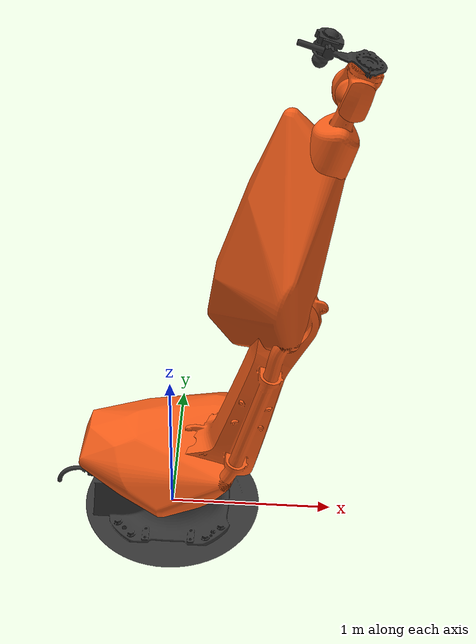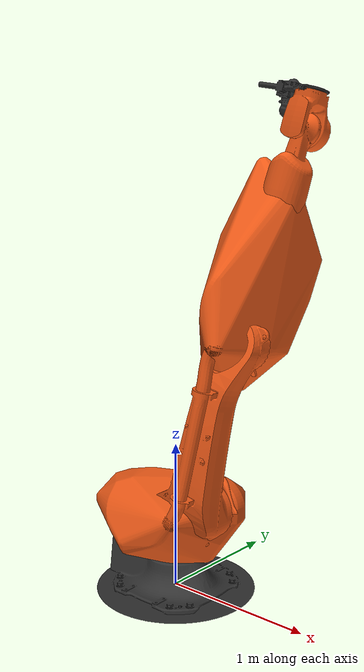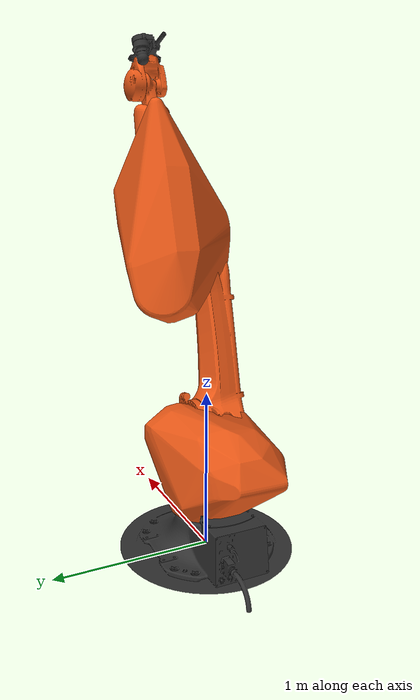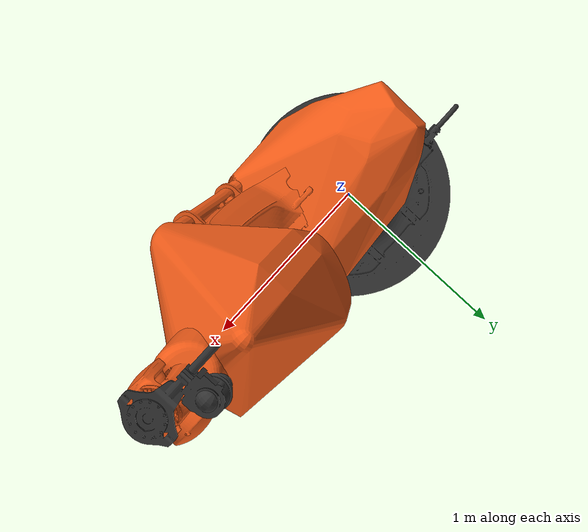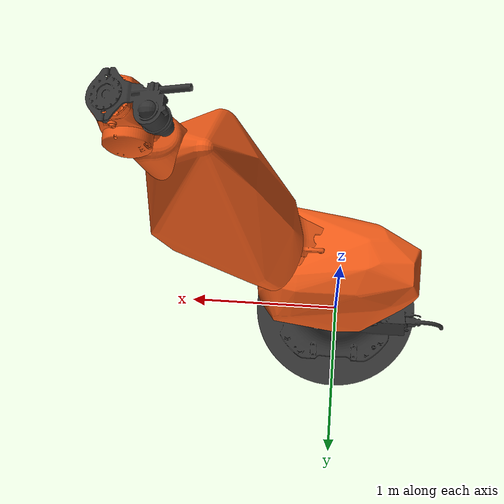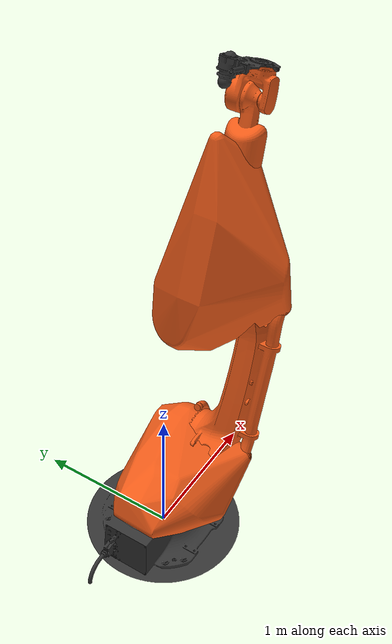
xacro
<?xml version="1.0"?>
<robot xmlns:xacro="http://www.ros.org/wiki/xacro" name="kr210_r2700">
  <xacro:arg name="prefix" default="kr210_"/>
  <xacro:arg name="rsi_ip" default="0.0.0.0"/>
  <xacro:arg name="rsi_port" default="49152"/>
  <xacro:arg name="connection_timeout" default="30"/>
  <xacro:arg name="communication_timeout" default="1"/>
  <xacro:arg name="has_ft_sensor" default="false"/>
  <xacro:arg name="load_ros2_control" default="false"/>
  <xacro:arg name="connected_to" default=""/>
  <xacro:arg name="xyz" default="0 0 0"/>
  <xacro:arg name="rpy" default="0 0 0"/>

  <xacro:include filename="$(find kuka_kr_description)/robots/kr210_r2700.xacro"/>

  <xacro:kr210_r2700 prefix="$(arg prefix)" connected_to="$(arg connected_to)" xyz="$(arg xyz)" rpy="$(arg rpy)"/>
  <xacro:if value="$(arg load_ros2_control)">
    <xacro:include filename="$(find kuka_kr_description)/ros2_control/kr210_r2700.ros2_control.xacro"/>
    <xacro:kr210_r2700_interface
            name="RsiInterface"
            prefix="$(arg prefix)"
            rsi_ip="$(arg rsi_ip)"
            rsi_port="$(arg rsi_port)"
            connection_timeout="$(arg connection_timeout)"
            communication_timeout="$(arg communication_timeout)"
            has_ft_sensor="$(arg has_ft_sensor)"
    />
  </xacro:if>
</robot>

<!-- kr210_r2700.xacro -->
<robot xmlns:xacro="http://www.ros.org/wiki/xacro" name="kr210_r2700_macro">
  <xacro:macro name="kr210_r2700" params="prefix:='kr210_' connected_to:='' xyz:='0 0 0' rpy:='0 0 0'">
    <!-- LINKS -->
    <!-- base link -->
    <material name="black">
      <color rgba="0.2 0.2 0.2 1"/>
    </material>
    <material name="orange">
      <color rgba="0.945 0.359 0.098 1"/>
    </material>
    <link name="${prefix}base_link">
      <visual>
        <origin xyz="0 0 0" rpy="0 0 0"/>
        <geometry>
          <mesh filename="package://kuka_kr_description/meshes/kr210_r2700/visual/base_link.stl" />
        </geometry>
        <material name="black"/>
      </visual>
      <collision>
        <origin xyz="0 0 0" rpy="0 0 0"/>
        <geometry>
          <mesh filename="package://kuka_kr_description/meshes/kr210_r2700/collision/base_link.stl"/>
        </geometry>
      </collision>
      <inertial>
        <origin xyz="0 0 0" rpy="0 0 0"/>
        <mass value="1572.9"/>
        <inertia ixx="89.282" ixy="-0.47721" ixz="0.85562" iyy="107.51" iyz="0.0067576" izz="172.02"/>
      </inertial>
    </link>
    <!-- link 1 (A1) -->
    <link name="${prefix}link_1">
      <visual>
        <origin xyz="0 0 0" rpy="0 0 0"/>
        <geometry>
          <mesh filename="package://kuka_kr_description/meshes/kr210_r2700/visual/link_1.stl" />
        </geometry>
        <material name="orange"/>
      </visual>
      <collision>
        <origin xyz="0 0 0" rpy="0 0 0"/>
        <geometry>
          <mesh filename="package://kuka_kr_description/meshes/kr210_r2700/collision/link_1.stl"/>
        </geometry>
      </collision>
      <inertial>
        <origin xyz="0 0 0" rpy="0 0 0"/>
        <mass value="1385.5"/>
        <inertia ixx="90.873" ixy="33.809" ixz="17.159" iyy="147.03" iyz="0.063634" izz="168.19"/>
      </inertial>
    </link>
    <!-- link 2 -->
    <link name="${prefix}link_2">
      <visual>
        <origin xyz="0 0 0" rpy="0 0 0"/>
        <geometry>
          <mesh filename="package://kuka_kr_description/meshes/kr210_r2700/visual/link_2.stl"/>
        </geometry>
        <material name="orange"/>
      </visual>
      <collision>
        <origin xyz="0 0 0" rpy="0 0 0"/>
        <geometry>
          <mesh filename="package://kuka_kr_description/meshes/kr210_r2700/collision/link_2.stl"/>
        </geometry>
      </collision>
      <inertial>
        <origin xyz="0 0 0" rpy="0 0 0"/>
        <mass value="958.62"/>
        <inertia ixx="180.42" ixy="-0.83462" ixz="0.32549" iyy="177.68" iyz="-20.82" izz="20.495"/>
      </inertial>
    </link>
    <!-- link 3 -->
    <link name="${prefix}link_3">
      <visual>
        <origin xyz="0 0 0" rpy="0 0 0"/>
        <geometry>
          <mesh filename="package://kuka_kr_description/meshes/kr210_r2700/visual/link_3.stl" />
        </geometry>
        <material name="orange"/>
      </visual>
      <inertial>
        <origin xyz="0 0 0" rpy="0 0 0"/>
        <mass value="710.03"/>
        <inertia ixx="11.887" ixy="-0.12154" ixz="-1.3604" iyy="98.805" iyz="-0.056505" izz="96.251"/>
      </inertial>
      <collision>
        <origin xyz="0 0 0" rpy="0 0 0"/>
        <geometry>
          <mesh filename="package://kuka_kr_description/meshes/kr210_r2700/collision/link_3.stl"/>
        </geometry>
      </collision>
    </link>
    <!-- link 4 -->
    <link name="${prefix}link_4">
      <visual>
        <origin xyz="0 0 0" rpy="0 0 0"/>
        <geometry>
          <mesh filename="package://kuka_kr_description/meshes/kr210_r2700/visual/link_4.stl" />
        </geometry>
        <material name="orange"/>
      </visual>
      <collision>
        <origin xyz="0 0 0" rpy="0 0 0"/>
        <geometry>
          <mesh filename="package://kuka_kr_description/meshes/kr210_r2700/collision/link_4.stl"/>
        </geometry>
      </collision>
      <inertial>
        <origin xyz="0 0 0" rpy="0 0 0"/>
        <mass value="173.73"/>
        <inertia ixx="1.8001" ixy="-0.18515" ixz="0.00051232" iyy="5.514" iyz="0.00070469" izz="6.3498"/>
      </inertial>
    </link>
    <!-- link 5 -->
    <link name="${prefix}link_5">
      <visual>
        <origin xyz="0 0 0" rpy="0 0 0"/>
        <geometry>
          <mesh filename="package://kuka_kr_description/meshes/kr210_r2700/visual/link_5.stl" />
        </geometry>
        <material name="orange"/>
      </visual>
      <collision>
        <origin xyz="0 0 0" rpy="0 0 0"/>
        <geometry>
          <mesh filename="package://kuka_kr_description/meshes/kr210_r2700/collision/link_5.stl"/>
        </geometry>
      </collision>
      <inertial>
        <origin xyz="0 0 0" rpy="0 0 0"/>
        <mass value="72.17"/>
        <inertia ixx="0.3938" ixy="-0.085332" ixz="1.7223E-06" iyy="0.68945" iyz="-7.0292E-06" izz="0.67292"/>
      </inertial>
    </link>
    <!-- link 6 -->
    <link name="${prefix}link_6">
      <visual>
        <origin xyz="0 0 0" rpy="0 0 0"/>
        <geometry>
          <mesh filename="package://kuka_kr_description/meshes/kr210_r2700/visual/link_6.stl" />
        </geometry>
        <material name="black"/>
      </visual>
      <collision>
        <origin xyz="0 0 0" rpy="0 0 -0.785398"/>
        <geometry>
          <mesh filename="package://kuka_kr_description/meshes/kr210_r2700/collision/link_6.stl"/>
        </geometry>
      </collision>
      <inertial>
        <origin xyz="-0.017956 -1.5237E-05 0.00015484" rpy="0 0 0"/>
        <mass value="6.3154"/>
        <inertia ixx="0.031746" ixy="1.7673E-07" ixz="-6.6558E-06" iyy="0.016686" iyz="1.4304E-07" izz="0.016723"/>
      </inertial>
    </link>
    <!-- END LINKS -->

    <!-- JOINTS -->
    <!-- joint 1 (A1) -->
    <joint name="${prefix}joint_a1" type="revolute">
      <origin xyz="0 0 0.24" rpy="0 0 0"/>
      <parent link="${prefix}base_link"/>
      <child link="${prefix}link_1"/>
      <axis xyz="0 0 -1"/>
      <limit effort="0" lower="${radians(-185)}" upper="${radians(185)}" velocity="${radians(120)}"/>
    </joint>
    <!-- joint 2 (A2) -->
    <joint name="${prefix}joint_a2" type="revolute">
      <origin xyz="0.330 0 0.405" rpy="0 ${radians(90)} 0"/>
      <parent link="${prefix}link_1"/>
      <child link="${prefix}link_2"/>
      <axis xyz="0 1 0"/>
      <limit effort="0" lower="${radians(-140)}" upper="${radians(-5)}" velocity="${radians(115)}"/>
    </joint>
    <!-- joint 3 (A3) -->
    <joint name="${prefix}joint_a3" type="revolute">
      <origin xyz="0 0 1.15" rpy="0 0 0"/>
      <parent link="${prefix}link_2"/>
      <child link="${prefix}link_3"/>
      <axis xyz="0 1 0"/>
      <limit effort="0" lower="${radians(-120)}" upper="${radians(168)}" velocity="${radians(112)}"/>
    </joint>
    <!-- joint 4 (A4) -->
    <joint name="${prefix}joint_a4" type="revolute">
      <origin xyz="-0.115 0 1.22" rpy="0 0 0"/>
      <parent link="${prefix}link_3"/>
      <child link="${prefix}link_4"/>
      <axis xyz="0 0 -1"/>
      <limit effort="0" lower="${radians(-350)}" upper="${radians(350)}" velocity="${radians(179)}"/>
    </joint>
    <!-- joint 5 (A5) -->
    <joint name="${prefix}joint_a5" type="revolute">
      <origin xyz="0 0 0" rpy="${radians(-90)} 0 0"/>
      <parent link="${prefix}link_4"/>
      <child link="${prefix}link_5"/>
      <axis xyz="0 0 1"/>
      <limit effort="0" lower="${radians(-125)}" upper="${radians(125)}" velocity="${radians(172)}"/>
    </joint>
    <!-- joint 6 (A6) -->
    <joint name="${prefix}joint_a6" type="revolute">
      <origin xyz="0 -0.215 0" rpy="${radians(90)} 0 0"/>
      <parent link="${prefix}link_5"/>
      <child link="${prefix}link_6"/>
      <axis xyz="0 0 -1"/>
      <limit effort="0" lower="${radians(-350)}" upper="${radians(350)}" velocity="${radians(220)}"/>
    </joint>
    <!-- END JOINTS -->

    <xacro:if value="${connected_to == ''}">
      <xacro:property name="base_frame_name" value="world"/>
    </xacro:if>
    <xacro:unless value="${connected_to == ''}">
      <xacro:property name="base_frame_name" value="${connected_to}"/>
    </xacro:unless>
    <link name="${base_frame_name}"/>
    <joint name="${base_frame_name}-${prefix}base_link" type="fixed">
      <origin xyz="${xyz}" rpy="${rpy}"/>
      <parent link="${base_frame_name}"/>
      <child link="${prefix}base_link"/>
    </joint>

    <!-- ROS base_link to KUKA $ROBROOT coordinate system transform -->
    <link name="${prefix}base" />
    <joint name="${prefix}base_link-base" type="fixed">
      <origin xyz="0 0 0" rpy="0 0 0"/>
      <parent link="${prefix}base_link"/>
      <child link="${prefix}base"/>
    </joint>

    <!-- This frame corresponds to the $TOOL coordinate system in KUKA KRC controllers -->
    <link name="${prefix}tool0" />
    <joint name="${prefix}link_6-tool0" type="fixed">
      <parent link="${prefix}link_6"/>
      <child link="${prefix}tool0"/>
      <origin xyz="0 0 0" rpy="0 0 0"/>
    </joint>

  </xacro:macro>
</robot>
